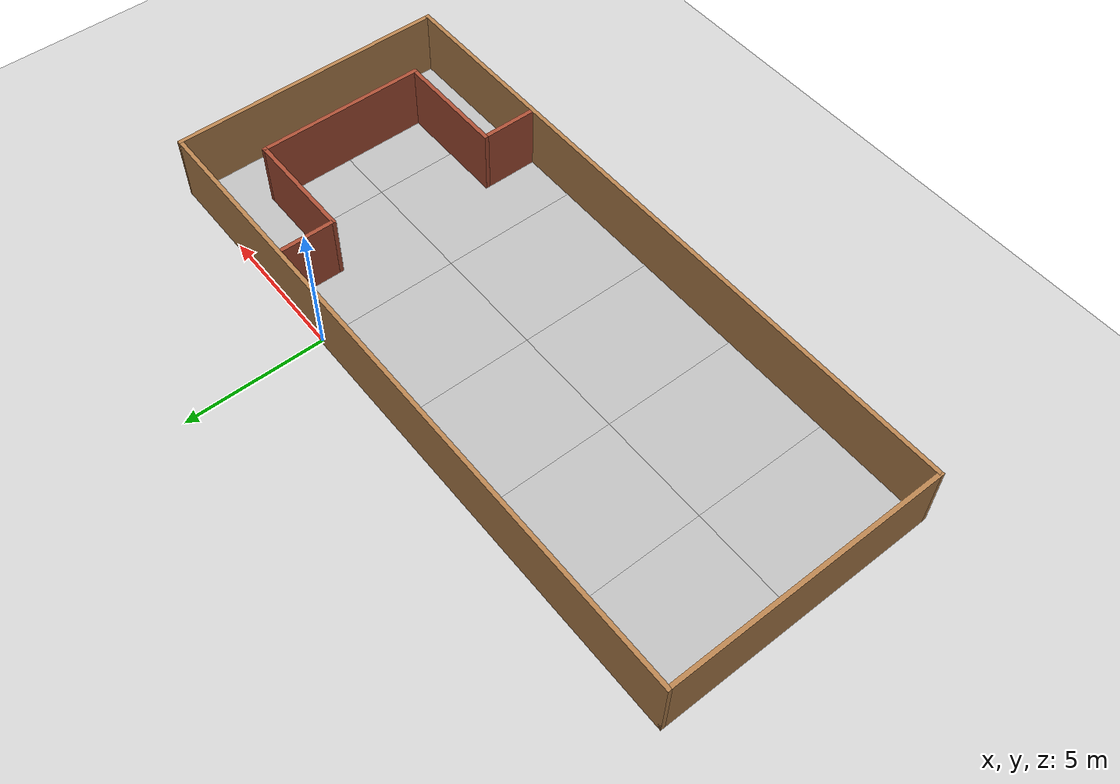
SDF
<sdf version="1.7">
 <world name="default">
  <light name="sun" type="directional">
   <pose>0 0 10 0 -0 0</pose>
   <diffuse>0.8 0.8 0.8 1</diffuse>
   <specular>0.2 0.2 0.2 1</specular>
   <attenuation>
    <range>1000</range>
    <constant>0.9</constant>
    <linear>0.01</linear>
    <quadratic>0.001</quadratic>
   </attenuation>
   <direction>-0.5 0.1 -0.9</direction>
   <spot><inner_angle>0</inner_angle><outer_angle>0</outer_angle><falloff>0</falloff></spot>
  </light>
  <model name="ground_plane">
   <static>1</static>
   <link name="link">
    <collision name="collision">
     <geometry><plane><normal>0 0 1</normal><size>100 100</size></plane></geometry>
     <surface>
      <contact><collide_bitmask>65535</collide_bitmask></contact>
      <friction><ode><mu>100</mu><mu2>50</mu2></ode></friction>
     </surface>
    </collision>
    <visual name="visual">
     <cast_shadows>0</cast_shadows>
     <geometry><plane><normal>0 0 1</normal><size>100 100</size></plane></geometry>
     <material>
      <script><uri>file://media/materials/scripts/gazebo.material</uri><name>Gazebo/Grey</name></script>
     </material>
    </visual>
   </link>
  </model>
  <gravity>0 0 -9.8</gravity>
  <magnetic_field>6e-06 2.3e-05 -4.2e-05</magnetic_field>
  <atmosphere type="adiabatic"/>
  <physics type="ode">
   <max_step_size>0.001</max_step_size>
   <real_time_factor>1</real_time_factor>
   <real_time_update_rate>1000</real_time_update_rate>
  </physics>
  <scene><ambient>0.4 0.4 0.4 1</ambient><background>0.7 0.7 0.7 1</background><shadows>1</shadows></scene>
  <audio><device>default</device></audio>
  <spherical_coordinates>
   <surface_model>EARTH_WGS84</surface_model>
   <latitude_deg>0</latitude_deg>
   <longitude_deg>0</longitude_deg>
   <elevation>0</elevation>
   <heading_deg>0</heading_deg>
  </spherical_coordinates>
  <model name="mud_box">
   <static>1</static>
   <link name="link">
    <collision name="collision"><geometry><box><size>8 10 0.2</size></box></geometry></collision>
    <visual name="visual_1">
     <pose>-2 2.5 0 0 -0 0</pose>
     <cast_shadows>0</cast_shadows>
     <geometry><box><size>4 5 0.2</size></box></geometry>
     <material>
      <script>
       <uri>model://mud_box/materials/scripts</uri>
       <uri>model://mud_box/materials/textures</uri>
       <name>vrc/mud</name>
      </script>
     </material>
    </visual>
    <visual name="visual_2">
     <pose>2 2.5 0 0 -0 0</pose>
     <cast_shadows>0</cast_shadows>
     <geometry><box><size>4 5 0.2</size></box></geometry>
     <material>
      <script>
       <uri>model://mud_box/materials/scripts</uri>
       <uri>model://mud_box/materials/textures</uri>
       <name>vrc/mud</name>
      </script>
     </material>
    </visual>
    <visual name="visual_3">
     <pose>2 -2.5 0 0 -0 0</pose>
     <cast_shadows>0</cast_shadows>
     <geometry><box><size>4 5 0.2</size></box></geometry>
     <material>
      <script>
       <uri>model://mud_box/materials/scripts</uri>
       <uri>model://mud_box/materials/textures</uri>
       <name>vrc/mud</name>
      </script>
     </material>
    </visual>
    <visual name="visual_4">
     <pose>-2 -2.5 0 0 -0 0</pose>
     <cast_shadows>0</cast_shadows>
     <geometry><box><size>4 5 0.2</size></box></geometry>
     <material>
      <script>
       <uri>model://mud_box/materials/scripts</uri>
       <uri>model://mud_box/materials/textures</uri>
       <name>vrc/mud</name>
      </script>
     </material>
    </visual>
   </link>
   <pose>-4 -5 0 0 -0 0</pose>
  </model>
  <model name="mud_box_1">
   <static>1</static>
   <link name="link">
    <collision name="collision"><geometry><box><size>8 10 0.2</size></box></geometry></collision>
    <visual name="visual_1">
     <pose>-2 2.5 0 0 -0 0</pose>
     <cast_shadows>0</cast_shadows>
     <geometry><box><size>4 5 0.2</size></box></geometry>
     <material>
      <script>
       <uri>model://mud_box/materials/scripts</uri>
       <uri>model://mud_box/materials/textures</uri>
       <name>vrc/mud</name>
      </script>
     </material>
    </visual>
    <visual name="visual_2">
     <pose>2 2.5 0 0 -0 0</pose>
     <cast_shadows>0</cast_shadows>
     <geometry><box><size>4 5 0.2</size></box></geometry>
     <material>
      <script>
       <uri>model://mud_box/materials/scripts</uri>
       <uri>model://mud_box/materials/textures</uri>
       <name>vrc/mud</name>
      </script>
     </material>
    </visual>
    <visual name="visual_3">
     <pose>2 -2.5 0 0 -0 0</pose>
     <cast_shadows>0</cast_shadows>
     <geometry><box><size>4 5 0.2</size></box></geometry>
     <material>
      <script>
       <uri>model://mud_box/materials/scripts</uri>
       <uri>model://mud_box/materials/textures</uri>
       <name>vrc/mud</name>
      </script>
     </material>
    </visual>
    <visual name="visual_4">
     <pose>-2 -2.5 0 0 -0 0</pose>
     <cast_shadows>0</cast_shadows>
     <geometry><box><size>4 5 0.2</size></box></geometry>
     <material>
      <script>
       <uri>model://mud_box/materials/scripts</uri>
       <uri>model://mud_box/materials/textures</uri>
       <name>vrc/mud</name>
      </script>
     </material>
    </visual>
   </link>
   <pose>4 -5 0 0 -0 0</pose>
  </model>
  <model name="mud_box_3">
   <static>1</static>
   <link name="link">
    <collision name="collision"><geometry><box><size>8 10 0.2</size></box></geometry></collision>
    <visual name="visual_1">
     <pose>-2 2.5 0 0 -0 0</pose>
     <cast_shadows>0</cast_shadows>
     <geometry><box><size>4 5 0.2</size></box></geometry>
     <material>
      <script>
       <uri>model://mud_box/materials/scripts</uri>
       <uri>model://mud_box/materials/textures</uri>
       <name>vrc/mud</name>
      </script>
     </material>
    </visual>
    <visual name="visual_2">
     <pose>2 2.5 0 0 -0 0</pose>
     <cast_shadows>0</cast_shadows>
     <geometry><box><size>4 5 0.2</size></box></geometry>
     <material>
      <script>
       <uri>model://mud_box/materials/scripts</uri>
       <uri>model://mud_box/materials/textures</uri>
       <name>vrc/mud</name>
      </script>
     </material>
    </visual>
    <visual name="visual_3">
     <pose>2 -2.5 0 0 -0 0</pose>
     <cast_shadows>0</cast_shadows>
     <geometry><box><size>4 5 0.2</size></box></geometry>
     <material>
      <script>
       <uri>model://mud_box/materials/scripts</uri>
       <uri>model://mud_box/materials/textures</uri>
       <name>vrc/mud</name>
      </script>
     </material>
    </visual>
    <visual name="visual_4">
     <pose>-2 -2.5 0 0 -0 0</pose>
     <cast_shadows>0</cast_shadows>
     <geometry><box><size>4 5 0.2</size></box></geometry>
     <material>
      <script>
       <uri>model://mud_box/materials/scripts</uri>
       <uri>model://mud_box/materials/textures</uri>
       <name>vrc/mud</name>
      </script>
     </material>
    </visual>
   </link>
   <pose>-12 -5 0 0 -0 0</pose>
  </model>
  <model name="new_farm">
   <pose>-4 -5 0 0 -0 0</pose>
   <link name="Wall_11">
    <collision name="Wall_11_Collision">
     <geometry><box><size>24.15 0.15 2.5</size></box></geometry>
     <pose>0 0 1.25 0 -0 0</pose>
    </collision>
    <visual name="Wall_11_Visual">
     <pose>0 0 1.25 0 -0 0</pose>
     <geometry><box><size>24.15 0.15 2.5</size></box></geometry>
     <material>
      <script><uri>file://media/materials/scripts/gazebo.material</uri><name>Gazebo/Wood</name></script>
      <ambient>1 1 1 1</ambient>
     </material>
     <meta><layer>0</layer></meta>
    </visual>
    <pose>-0 -5 0 0 -0 3.14159</pose>
   </link>
   <link name="Wall_12">
    <collision name="Wall_12_Collision">
     <geometry><box><size>10.15 0.15 2.5</size></box></geometry>
     <pose>0 0 1.25 0 -0 0</pose>
    </collision>
    <visual name="Wall_12_Visual">
     <pose>0 0 1.25 0 -0 0</pose>
     <geometry><box><size>10.15 0.15 2.5</size></box></geometry>
     <material>
      <script><uri>file://media/materials/scripts/gazebo.material</uri><name>Gazebo/Wood</name></script>
      <ambient>1 1 1 1</ambient>
     </material>
     <meta><layer>0</layer></meta>
    </visual>
    <pose>-12 0 0 0 -0 1.5708</pose>
   </link>
   <link name="Wall_13">
    <collision name="Wall_13_Collision">
     <geometry><box><size>24.1505 0.15 2.5</size></box></geometry>
     <pose>0 0 1.25 0 -0 0</pose>
    </collision>
    <visual name="Wall_13_Visual">
     <pose>0 0 1.25 0 -0 0</pose>
     <geometry><box><size>24.1505 0.15 2.5</size></box></geometry>
     <material>
      <script><uri>file://media/materials/scripts/gazebo.material</uri><name>Gazebo/Wood</name></script>
      <ambient>1 1 1 1</ambient>
     </material>
     <meta><layer>0</layer></meta>
    </visual>
    <pose>-0 5 0 0 -0 0</pose>
   </link>
   <link name="Wall_9">
    <collision name="Wall_9_Collision">
     <geometry><box><size>10.15 0.15 2.5</size></box></geometry>
     <pose>0 0 1.25 0 -0 0</pose>
    </collision>
    <visual name="Wall_9_Visual">
     <pose>0 0 1.25 0 -0 0</pose>
     <geometry><box><size>10.15 0.15 2.5</size></box></geometry>
     <material>
      <script><uri>file://media/materials/scripts/gazebo.material</uri><name>Gazebo/Wood</name></script>
      <ambient>1 1 1 1</ambient>
     </material>
     <meta><layer>0</layer></meta>
    </visual>
    <pose>12 0 0 0 -0 -1.5708</pose>
   </link>
   <static>1</static>
  </model>
  <model name="new_farm_0">
   <pose>3.0375 -4.9625 0 0 -0 0</pose>
   <link name="Wall_15">
    <collision name="Wall_15_Collision">
     <geometry><box><size>4.15 0.15 2.5</size></box></geometry>
     <pose>0 0 1.25 0 -0 0</pose>
    </collision>
    <visual name="Wall_15_Visual">
     <pose>0 0 1.25 0 -0 0</pose>
     <geometry><box><size>4.15 0.15 2.5</size></box></geometry>
     <material>
      <script><uri>file://media/materials/scripts/gazebo.material</uri><name>Gazebo/Bricks</name></script>
      <ambient>1 1 1 1</ambient>
     </material>
     <meta><layer>0</layer></meta>
    </visual>
    <pose>0.9625 2.9625 0 0 -0 3.14159</pose>
   </link>
   <link name="Wall_19">
    <collision name="Wall_19_Collision">
     <geometry><box><size>6.15 0.15 2.5</size></box></geometry>
     <pose>0 0 1.25 0 -0 0</pose>
    </collision>
    <visual name="Wall_19_Visual">
     <pose>0 0 1.25 0 -0 0</pose>
     <geometry><box><size>6.15 0.15 2.5</size></box></geometry>
     <material>
      <script><uri>file://media/materials/scripts/gazebo.material</uri><name>Gazebo/Bricks</name></script>
      <ambient>1 1 1 1</ambient>
     </material>
     <meta><layer>0</layer></meta>
    </visual>
    <pose>2.9625 -0.0375 0 0 -0 -1.5708</pose>
   </link>
   <link name="Wall_21">
    <collision name="Wall_21_Collision">
     <geometry><box><size>4.15 0.15 2.5</size></box></geometry>
     <pose>0 0 1.25 0 -0 0</pose>
    </collision>
    <visual name="Wall_21_Visual">
     <pose>0 0 1.25 0 -0 0</pose>
     <geometry><box><size>4.15 0.15 2.5</size></box></geometry>
     <material>
      <script><uri>file://media/materials/scripts/gazebo.material</uri><name>Gazebo/Bricks</name></script>
      <ambient>1 1 1 1</ambient>
     </material>
     <meta><layer>0</layer></meta>
    </visual>
    <pose>0.9625 -3.0375 0 0 -0 3.14159</pose>
   </link>
   <link name="Wall_24">
    <collision name="Wall_24_Collision">
     <geometry><box><size>2 0.15 2.5</size></box></geometry>
     <pose>0 0 1.25 0 -0 0</pose>
    </collision>
    <visual name="Wall_24_Visual">
     <pose>0 0 1.25 0 -0 0</pose>
     <geometry><box><size>2 0.15 2.5</size></box></geometry>
     <material>
      <script><uri>file://media/materials/scripts/gazebo.material</uri><name>Gazebo/Bricks</name></script>
      <ambient>1 1 1 1</ambient>
     </material>
     <meta><layer>0</layer></meta>
    </visual>
    <pose>-1.0375 3.8875 0 0 -0 1.5708</pose>
   </link>
   <link name="Wall_33">
    <collision name="Wall_33_Collision">
     <geometry><box><size>2 0.15 2.5</size></box></geometry>
     <pose>0 0 1.25 0 -0 0</pose>
    </collision>
    <visual name="Wall_33_Visual">
     <pose>0 0 1.25 0 -0 0</pose>
     <geometry><box><size>2 0.15 2.5</size></box></geometry>
     <material>
      <script><uri>file://media/materials/scripts/gazebo.material</uri><name>Gazebo/Bricks</name></script>
      <ambient>1 1 1 1</ambient>
     </material>
     <meta><layer>0</layer></meta>
    </visual>
    <pose>-1.0375 -3.9625 0 0 -0 -1.5708</pose>
   </link>
   <static>1</static>
  </model>
 </world>
</sdf>
